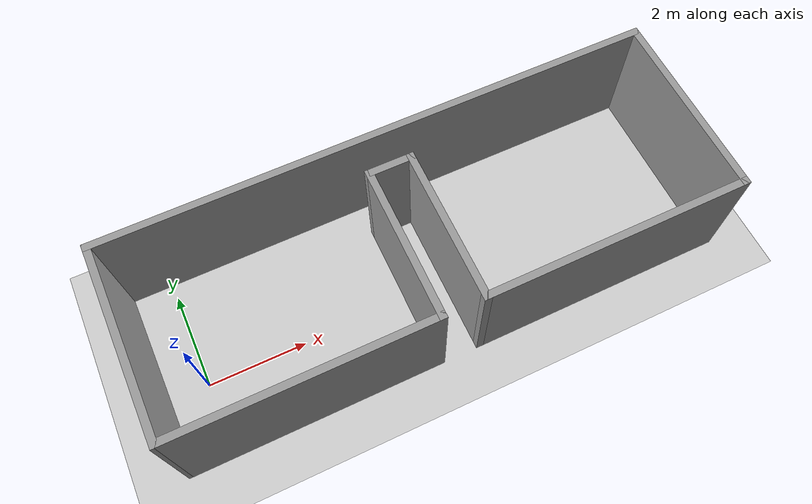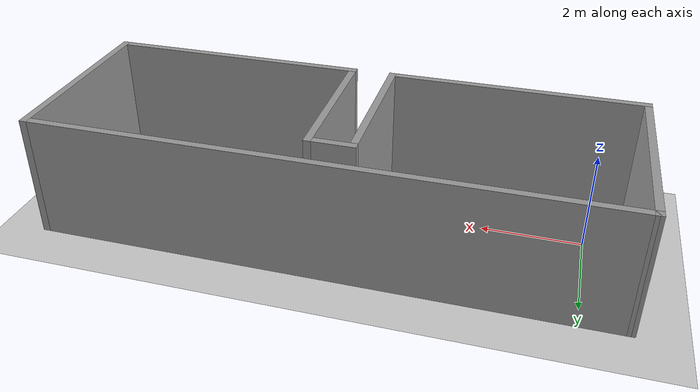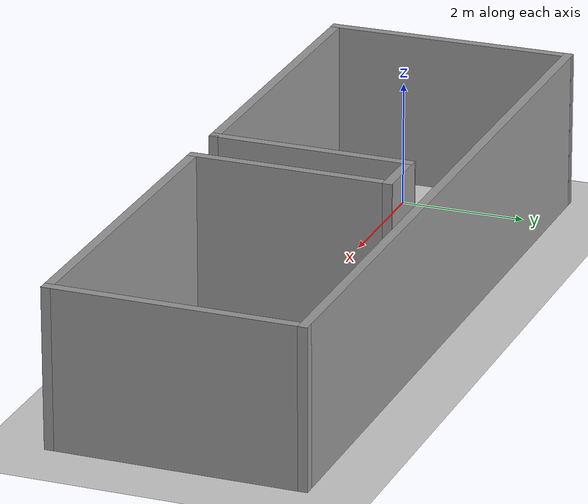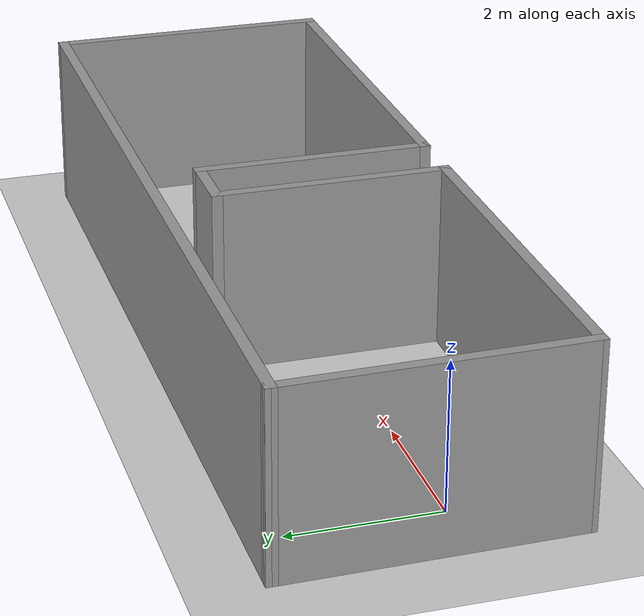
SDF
<sdf version="1.7">
 <world name="default">
  <model name="ground_plane">
   <static>1</static>
   <link name="link">
    <collision name="collision">
     <geometry><plane><normal>0 0 1</normal><size>100 100</size></plane></geometry>
     <surface><friction><ode><mu>100</mu><mu2>50</mu2></ode></friction></surface>
    </collision>
    <visual name="visual">
     <cast_shadows>0</cast_shadows>
     <geometry><plane><normal>0 0 1</normal><size>100 100</size></plane></geometry>
     <material>
      <script><uri>file://media/materials/scripts/gazebo.material</uri><name>Gazebo/Grey</name></script>
     </material>
    </visual>
   </link>
  </model>
  <light name="sun" type="directional">
   <pose>0 0 10 0 -0 0</pose>
   <diffuse>0.8 0.8 0.8 1</diffuse>
   <specular>0.2 0.2 0.2 1</specular>
   <attenuation>
    <range>1000</range>
    <constant>0.9</constant>
    <linear>0.01</linear>
    <quadratic>0.001</quadratic>
   </attenuation>
   <direction>-0.5 0.1 -0.9</direction>
   <spot><inner_angle>0</inner_angle><outer_angle>0</outer_angle><falloff>0</falloff></spot>
  </light>
  <scene><shadows>0</shadows><ambient>0.4 0.4 0.4 1</ambient><background>0.7 0.7 0.7 1</background></scene>
  <physics type="ode">
   <real_time_update_rate>1000</real_time_update_rate>
   <max_step_size>0.001</max_step_size>
   <real_time_factor>1</real_time_factor>
   <ode>
    <solver>
     <type>quick</type>
     <iters>150</iters>
     <precon_iters>0</precon_iters>
     <sor>1.4</sor>
     <use_dynamic_moi_rescaling>1</use_dynamic_moi_rescaling>
    </solver>
    <constraints>
     <cfm>1e-05</cfm>
     <erp>0.2</erp>
     <contact_max_correcting_vel>2000</contact_max_correcting_vel>
     <contact_surface_layer>0.01</contact_surface_layer>
    </constraints>
   </ode>
  </physics>
  <gravity>0 0 -9.8</gravity>
  <magnetic_field>6e-06 2.3e-05 -4.2e-05</magnetic_field>
  <atmosphere type="adiabatic"/>
  <audio><device>default</device></audio>
  <spherical_coordinates>
   <surface_model>EARTH_WGS84</surface_model>
   <latitude_deg>0</latitude_deg>
   <longitude_deg>0</longitude_deg>
   <elevation>0</elevation>
   <heading_deg>0</heading_deg>
  </spherical_coordinates>
  <model name="walls">
   <pose>4.78535 0.924404 0 0 -0 0</pose>
   <link name="Wall_0">
    <collision name="Wall_0_Collision">
     <geometry><box><size>11.5 0.15 2.5</size></box></geometry>
     <pose>0 0 1.25 0 -0 0</pose>
    </collision>
    <visual name="Wall_0_Visual">
     <pose>0 0 1.25 0 -0 0</pose>
     <geometry><box><size>11.5 0.15 2.5</size></box></geometry>
     <material>
      <script><uri>file://media/materials/scripts/gazebo.material</uri><name>Gazebo/Grey</name></script>
      <ambient>1 1 1 1</ambient>
     </material>
     <meta><layer>0</layer></meta>
    </visual>
    <pose>0.000484 1.47298 0 0 -0 0</pose>
   </link>
   <link name="Wall_1">
    <collision name="Wall_1_Collision">
     <geometry><box><size>4 0.15 2.5</size></box></geometry>
     <pose>0 0 1.25 0 -0 0</pose>
    </collision>
    <visual name="Wall_1_Visual">
     <pose>0 0 1.25 0 -0 0</pose>
     <geometry><box><size>4 0.15 2.5</size></box></geometry>
     <material>
      <script><uri>file://media/materials/scripts/gazebo.material</uri><name>Gazebo/Grey</name></script>
      <ambient>1 1 1 1</ambient>
     </material>
     <meta><layer>0</layer></meta>
    </visual>
    <pose>5.67548 -0.452016 0 0 -0 -1.5708</pose>
   </link>
   <link name="Wall_2">
    <collision name="Wall_2_Collision">
     <geometry><box><size>5.5 0.15 2.5</size></box></geometry>
     <pose>0 0 1.25 0 -0 0</pose>
    </collision>
    <visual name="Wall_2_Visual">
     <pose>0 0 1.25 0 -0 0</pose>
     <geometry><box><size>5.5 0.15 2.5</size></box></geometry>
     <material>
      <script><uri>file://media/materials/scripts/gazebo.material</uri><name>Gazebo/Grey</name></script>
      <ambient>1 1 1 1</ambient>
     </material>
     <meta><layer>0</layer></meta>
    </visual>
    <pose>3.00048 -2.37702 0 0 -0 3.14159</pose>
   </link>
   <link name="Wall_3">
    <collision name="Wall_3_Collision">
     <geometry><box><size>3.25 0.15 2.5</size></box></geometry>
     <pose>0 0 1.25 0 -0 0</pose>
    </collision>
    <visual name="Wall_3_Visual">
     <pose>0 0 1.25 0 -0 0</pose>
     <geometry><box><size>3.25 0.15 2.5</size></box></geometry>
     <material>
      <script><uri>file://media/materials/scripts/gazebo.material</uri><name>Gazebo/Grey</name></script>
      <ambient>1 1 1 1</ambient>
     </material>
     <meta><layer>0</layer></meta>
    </visual>
    <pose>0.325484 -0.827016 0 0 -0 1.5708</pose>
   </link>
   <link name="Wall_4">
    <collision name="Wall_4_Collision">
     <geometry><box><size>1 0.15 2.5</size></box></geometry>
     <pose>0 0 1.25 0 -0 0</pose>
    </collision>
    <visual name="Wall_4_Visual">
     <pose>0 0 1.25 0 -0 0</pose>
     <geometry><box><size>1 0.15 2.5</size></box></geometry>
     <material>
      <script><uri>file://media/materials/scripts/gazebo.material</uri><name>Gazebo/Grey</name></script>
      <ambient>1 1 1 1</ambient>
     </material>
     <meta><layer>0</layer></meta>
    </visual>
    <pose>-0.099516 0.722984 0 0 -0 3.14159</pose>
   </link>
   <link name="Wall_5">
    <collision name="Wall_5_Collision">
     <geometry><box><size>3.25 0.15 2.5</size></box></geometry>
     <pose>0 0 1.25 0 -0 0</pose>
    </collision>
    <visual name="Wall_5_Visual">
     <pose>0 0 1.25 0 -0 0</pose>
     <geometry><box><size>3.25 0.15 2.5</size></box></geometry>
     <material>
      <script><uri>file://media/materials/scripts/gazebo.material</uri><name>Gazebo/Grey</name></script>
      <ambient>1 1 1 1</ambient>
     </material>
     <meta><layer>0</layer></meta>
    </visual>
    <pose>-0.524516 -0.827016 0 0 -0 -1.5708</pose>
   </link>
   <link name="Wall_6">
    <collision name="Wall_6_Collision">
     <geometry><box><size>5.25 0.15 2.5</size></box></geometry>
     <pose>0 0 1.25 0 -0 0</pose>
    </collision>
    <visual name="Wall_6_Visual">
     <pose>0 0 1.25 0 -0 0</pose>
     <geometry><box><size>5.25 0.15 2.5</size></box></geometry>
     <material>
      <script><uri>file://media/materials/scripts/gazebo.material</uri><name>Gazebo/Grey</name></script>
      <ambient>1 1 1 1</ambient>
     </material>
     <meta><layer>0</layer></meta>
    </visual>
    <pose>-3.07452 -2.37702 0 0 -0 3.14159</pose>
   </link>
   <link name="Wall_7">
    <collision name="Wall_7_Collision">
     <geometry><box><size>4.00033 0.15 2.5</size></box></geometry>
     <pose>0 0 1.25 0 -0 0</pose>
    </collision>
    <visual name="Wall_7_Visual">
     <pose>0 0 1.25 0 -0 0</pose>
     <geometry><box><size>4.00033 0.15 2.5</size></box></geometry>
     <material>
      <script><uri>file://media/materials/scripts/gazebo.material</uri><name>Gazebo/Grey</name></script>
      <ambient>1 1 1 1</ambient>
     </material>
     <meta><layer>0</layer></meta>
    </visual>
    <pose>-5.64952 -0.452016 0 0 -0 1.58378</pose>
   </link>
   <static>1</static>
  </model>
 </world>
</sdf>
